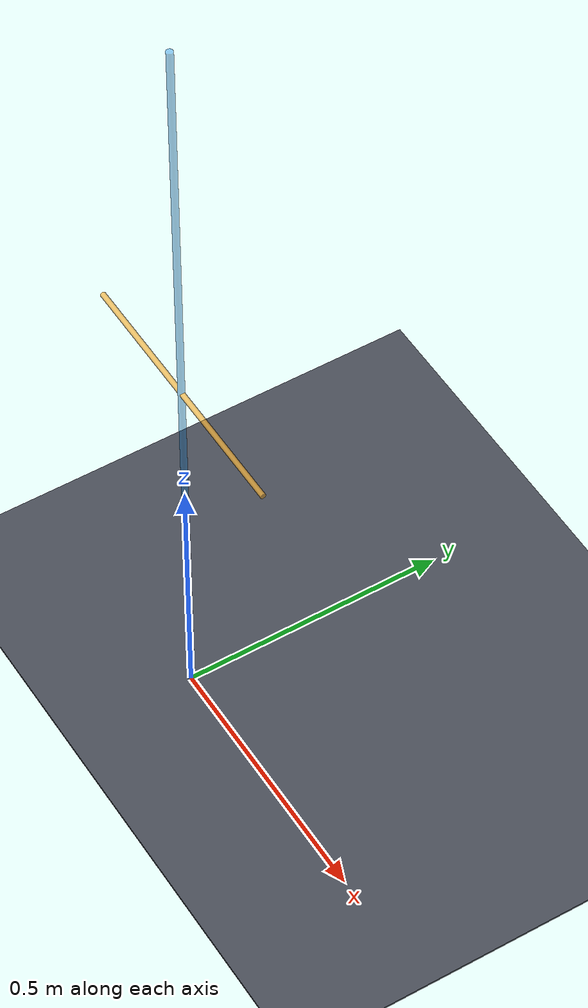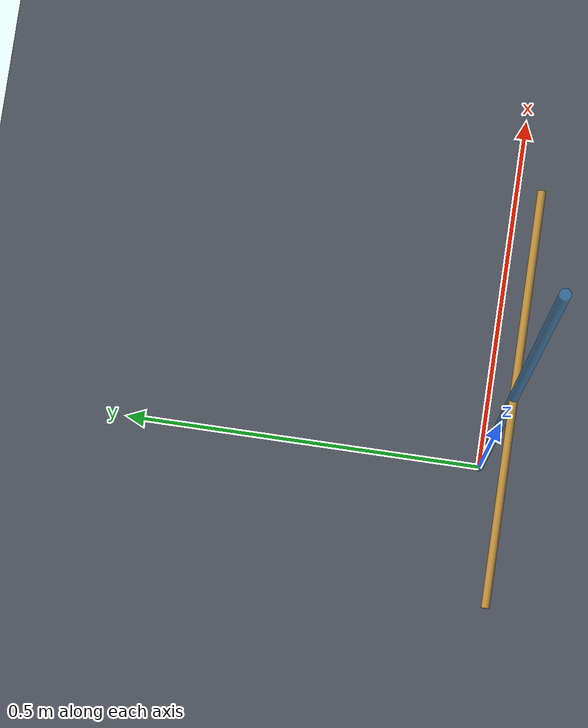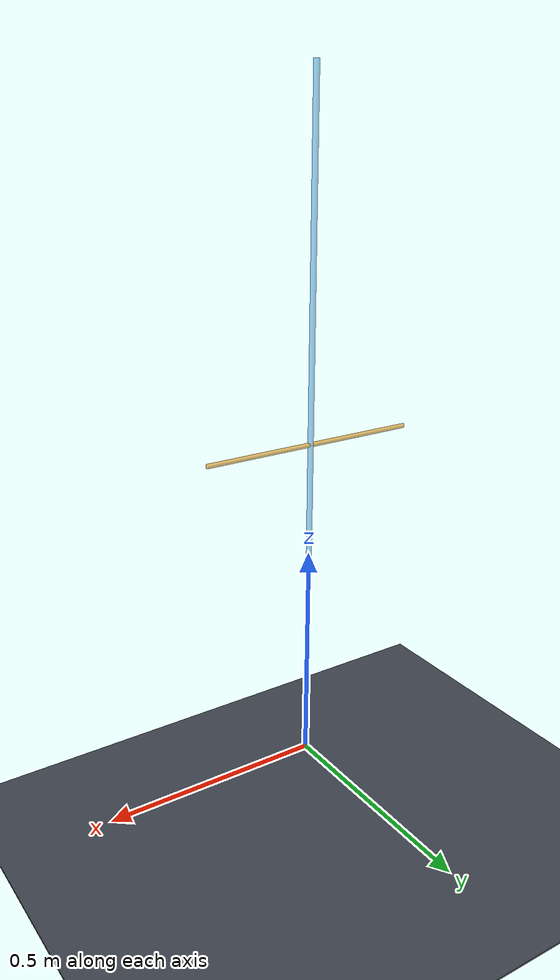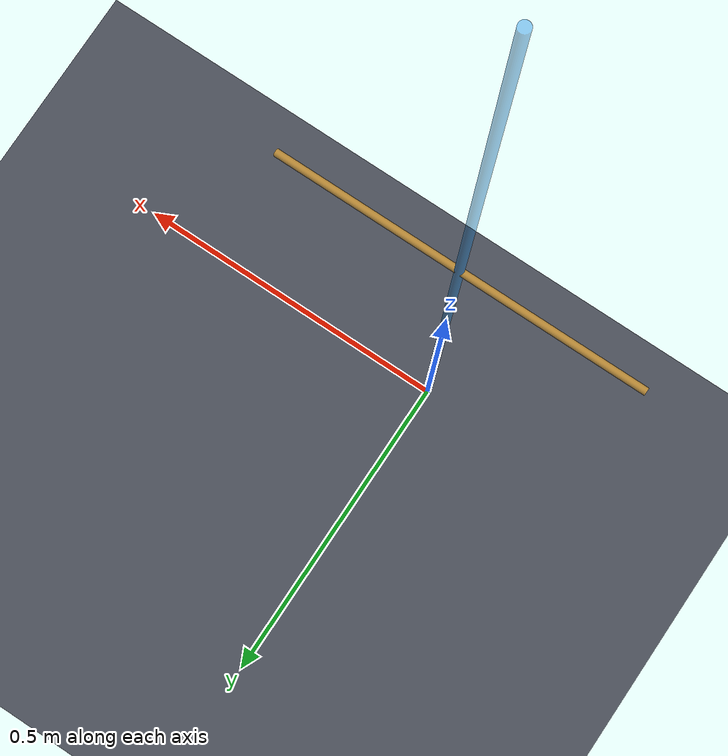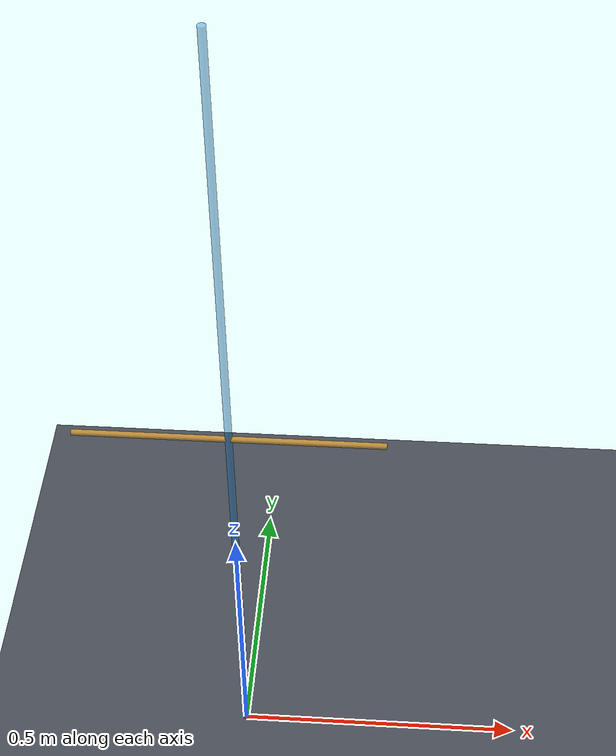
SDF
<?xml version="1.0" ?>
<sdf version="1.8">
  <world name="spotmicro_empty">
    <physics name="joint_test_physics" type="ignored">
      <max_step_size>0.002</max_step_size>
      <real_time_factor>1.0</real_time_factor>
      <real_time_update_rate>500</real_time_update_rate>
    </physics>

    <gravity>0 0 0</gravity>

    <plugin filename="ignition-gazebo-physics-system" name="ignition::gazebo::systems::Physics"/>
    <plugin filename="ignition-gazebo-sensors-system" name="ignition::gazebo::systems::Sensors">
      <render_engine>ogre2</render_engine>
    </plugin>
    <plugin filename="ignition-gazebo-scene-broadcaster-system" name="ignition::gazebo::systems::SceneBroadcaster"/>
    <plugin filename="ignition-gazebo-user-commands-system" name="ignition::gazebo::systems::UserCommands"/>
    <plugin filename="ignition-gazebo-imu-system" name="ignition::gazebo::systems::Imu"/>

    <scene>
      <ambient>0.75 0.78 0.82 1</ambient>
      <background>0.16 0.18 0.22 1</background>
      <grid>true</grid>
    </scene>

    <light name="sun" type="directional">
      <cast_shadows>true</cast_shadows>
      <pose>0 0 10 0 0 0</pose>
      <diffuse>0.85 0.85 0.85 1</diffuse>
      <specular>0.2 0.2 0.2 1</specular>
      <attenuation>
        <range>1000</range>
        <constant>0.9</constant>
        <linear>0.01</linear>
        <quadratic>0.001</quadratic>
      </attenuation>
      <direction>-0.5 0.2 -0.9</direction>
    </light>

    <model name="reference_floor">
      <static>true</static>
      <pose>0 0 0 0 0 0</pose>
      <link name="link">
        <visual name="visual">
          <geometry>
            <plane>
              <normal>0 0 1</normal>
              <size>4 4</size>
            </plane>
          </geometry>
          <material>
            <ambient>0.28 0.30 0.34 1</ambient>
            <diffuse>0.28 0.30 0.34 1</diffuse>
            <specular>0.05 0.05 0.05 1</specular>
          </material>
        </visual>
      </link>
    </model>

    <model name="pin_reference">
      <static>true</static>
      <pose>0 0 0.75 0 0 0</pose>
      <link name="link">
        <visual name="vertical_marker">
          <geometry>
            <cylinder>
              <radius>0.006</radius>
              <length>1.5</length>
            </cylinder>
          </geometry>
          <material>
            <ambient>0.1 0.55 0.9 0.45</ambient>
            <diffuse>0.1 0.55 0.9 0.45</diffuse>
          </material>
        </visual>
        <visual name="body_height_marker">
          <pose>0 0 0 0 1.57079632679 0</pose>
          <geometry>
            <cylinder>
              <radius>0.005</radius>
              <length>0.5</length>
            </cylinder>
          </geometry>
          <material>
            <ambient>0.95 0.68 0.2 0.7</ambient>
            <diffuse>0.95 0.68 0.2 0.7</diffuse>
          </material>
        </visual>
      </link>
    </model>
  </world>
</sdf>
